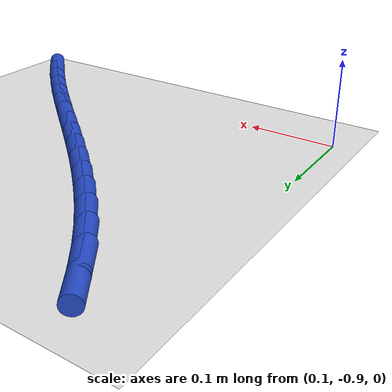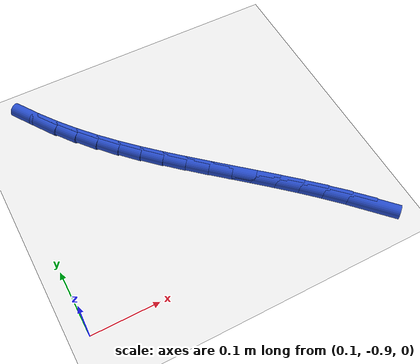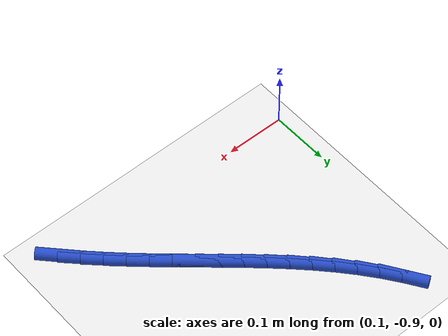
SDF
<sdf version="1.6">
 <world name="default">
  <model name="ground_plane">
   <static>1</static>
   <link name="link">
    <collision name="collision">
     <geometry><plane><normal>0 0 1</normal><size>100 100</size></plane></geometry>
     <surface><friction><ode><mu>100</mu><mu2>50</mu2></ode></friction></surface>
    </collision>
    <visual name="visual">
     <cast_shadows>0</cast_shadows>
     <geometry><plane><normal>0 0 1</normal><size>100 100</size></plane></geometry>
     <material>
      <script><uri>file://media/materials/scripts/gazebo.material</uri><name>Gazebo/WhiteGlow</name></script>
     </material>
    </visual>
   </link>
  </model>
  <model name="line">
   <link name="link_168">
    <pose>0.5252032725510724 -0.910985228207769 0.01 0 1.57 -0.8115361258432559</pose>
    <collision name="collision">
     <geometry><cylinder><radius>0.01</radius><length>0.08</length></cylinder></geometry>
    </collision>
    <visual name="visual">
     <material>
      <script><name>Gazebo/Blue</name><uri>file://media/materials/scripts/gazebo.material</uri></script>
     </material>
     <geometry><cylinder><radius>0.01</radius><length>0.08</length></cylinder></geometry>
    </visual>
   </link>
   <link name="link_169">
    <pose>0.5014257152789207 -0.885931017264958 0.01 0 1.57 -0.7833637095438479</pose>
    <collision name="collision">
     <geometry><cylinder><radius>0.01</radius><length>0.08</length></cylinder></geometry>
    </collision>
    <visual name="visual">
     <material>
      <script><name>Gazebo/Blue</name><uri>file://media/materials/scripts/gazebo.material</uri></script>
     </material>
     <geometry><cylinder><radius>0.01</radius><length>0.08</length></cylinder></geometry>
    </visual>
   </link>
   <link name="link_170">
    <pose>0.4770028307260287 -0.8616073055495197 0.01 0 1.57 -0.7577244981144322</pose>
    <collision name="collision">
     <geometry><cylinder><radius>0.01</radius><length>0.08</length></cylinder></geometry>
    </collision>
    <visual name="visual">
     <material>
      <script><name>Gazebo/Blue</name><uri>file://media/materials/scripts/gazebo.material</uri></script>
     </material>
     <geometry><cylinder><radius>0.01</radius><length>0.08</length></cylinder></geometry>
    </visual>
   </link>
   <link name="link_171">
    <pose>0.4520070286931518 -0.8379580347365837 0.01 0 1.57 -0.7383752324560617</pose>
    <collision name="collision">
     <geometry><cylinder><radius>0.01</radius><length>0.08</length></cylinder></geometry>
    </collision>
    <visual name="visual">
     <material>
      <script><name>Gazebo/Blue</name><uri>file://media/materials/scripts/gazebo.material</uri></script>
     </material>
     <geometry><cylinder><radius>0.01</radius><length>0.08</length></cylinder></geometry>
    </visual>
   </link>
   <link name="link_172">
    <pose>0.4265926795119469 -0.8148280656366896 0.01 0 1.57 -0.7253453768533851</pose>
    <collision name="collision">
     <geometry><cylinder><radius>0.01</radius><length>0.08</length></cylinder></geometry>
    </collision>
    <visual name="visual">
     <material>
      <script><name>Gazebo/Blue</name><uri>file://media/materials/scripts/gazebo.material</uri></script>
     </material>
     <geometry><cylinder><radius>0.01</radius><length>0.08</length></cylinder></geometry>
    </visual>
   </link>
   <link name="link_173">
    <pose>0.4009141535140719 -0.7920622590603772 0.01 0 1.57 -0.7186541052960764</pose>
    <collision name="collision">
     <geometry><cylinder><radius>0.01</radius><length>0.08</length></cylinder></geometry>
    </collision>
    <visual name="visual">
     <material>
      <script><name>Gazebo/Blue</name><uri>file://media/materials/scripts/gazebo.material</uri></script>
     </material>
     <geometry><cylinder><radius>0.01</radius><length>0.08</length></cylinder></geometry>
    </visual>
   </link>
   <link name="link_174">
    <pose>0.3751258210311842 -0.7695054758181852 0.01 0 1.57 -0.7183260035977945</pose>
    <collision name="collision">
     <geometry><cylinder><radius>0.01</radius><length>0.08</length></cylinder></geometry>
    </collision>
    <visual name="visual">
     <material>
      <script><name>Gazebo/Blue</name><uri>file://media/materials/scripts/gazebo.material</uri></script>
     </material>
     <geometry><cylinder><radius>0.01</radius><length>0.08</length></cylinder></geometry>
    </visual>
   </link>
   <link name="link_175">
    <pose>0.3493820523949413 -0.7470025767206536 0.01 0 1.57 -0.7243993301582526</pose>
    <collision name="collision">
     <geometry><cylinder><radius>0.01</radius><length>0.08</length></cylinder></geometry>
    </collision>
    <visual name="visual">
     <material>
      <script><name>Gazebo/Blue</name><uri>file://media/materials/scripts/gazebo.material</uri></script>
     </material>
     <geometry><cylinder><radius>0.01</radius><length>0.08</length></cylinder></geometry>
    </visual>
   </link>
   <link name="link_176">
    <pose>0.3238372179370008 -0.7243984225783221 0.01 0 1.57 -0.7369266751486617</pose>
    <collision name="collision">
     <geometry><cylinder><radius>0.01</radius><length>0.08</length></cylinder></geometry>
    </collision>
    <visual name="visual">
     <material>
      <script><name>Gazebo/Blue</name><uri>file://media/materials/scripts/gazebo.material</uri></script>
     </material>
     <geometry><cylinder><radius>0.01</radius><length>0.08</length></cylinder></geometry>
    </visual>
   </link>
   <link name="link_177">
    <pose>0.29864568798902014 -0.7015378742017295 0.01 0 1.57 -0.7559676951403903</pose>
    <collision name="collision">
     <geometry><cylinder><radius>0.01</radius><length>0.08</length></cylinder></geometry>
    </collision>
    <visual name="visual">
     <material>
      <script><name>Gazebo/Blue</name><uri>file://media/materials/scripts/gazebo.material</uri></script>
     </material>
     <geometry><cylinder><radius>0.01</radius><length>0.08</length></cylinder></geometry>
    </visual>
   </link>
   <link name="link_178">
    <pose>0.2739618328826571 -0.6782657924014158 0.01 0 1.57 -0.781573414787194</pose>
    <collision name="collision">
     <geometry><cylinder><radius>0.01</radius><length>0.08</length></cylinder></geometry>
    </collision>
    <visual name="visual">
     <material>
      <script><name>Gazebo/Blue</name><uri>file://media/materials/scripts/gazebo.material</uri></script>
     </material>
     <geometry><cylinder><radius>0.01</radius><length>0.08</length></cylinder></geometry>
    </visual>
   </link>
   <link name="link_179">
    <pose>0.24994002294956882 -0.6544270379879206 0.01 0 1.57 -0.8137616327898742</pose>
    <collision name="collision">
     <geometry><cylinder><radius>0.01</radius><length>0.08</length></cylinder></geometry>
    </collision>
    <visual name="visual">
     <material>
      <script><name>Gazebo/Blue</name><uri>file://media/materials/scripts/gazebo.material</uri></script>
     </material>
     <geometry><cylinder><radius>0.01</radius><length>0.08</length></cylinder></geometry>
    </visual>
   </link>
   <link name="link_180">
    <pose>0.2267346285214131 -0.6298664717717829 0.01 0 1.57 -0.8524835362517036</pose>
    <collision name="collision">
     <geometry><cylinder><radius>0.01</radius><length>0.08</length></cylinder></geometry>
    </collision>
    <visual name="visual">
     <material>
      <script><name>Gazebo/Blue</name><uri>file://media/materials/scripts/gazebo.material</uri></script>
     </material>
     <geometry><cylinder><radius>0.01</radius><length>0.08</length></cylinder></geometry>
    </visual>
   </link>
   <link name="link_181">
    <pose>0.20450001992984748 -0.6044289545635424 0.01 0 1.57 -0.8975131277024927</pose>
    <collision name="collision">
     <geometry><cylinder><radius>0.01</radius><length>0.08</length></cylinder></geometry>
    </collision>
    <visual name="visual">
     <material>
      <script><name>Gazebo/Blue</name><uri>file://media/materials/scripts/gazebo.material</uri></script>
     </material>
     <geometry><cylinder><radius>0.01</radius><length>0.08</length></cylinder></geometry>
    </visual>
   </link>
   <link name="link_182">
    <pose>0.1833892275966014 -0.5779614614706887 0.01 0 1.57 -0.9452769629866462</pose>
    <collision name="collision">
     <geometry><cylinder><radius>0.01</radius><length>0.08</length></cylinder></geometry>
    </collision>
    <visual name="visual">
     <material>
      <script><name>Gazebo/Blue</name><uri>file://media/materials/scripts/gazebo.material</uri></script>
     </material>
     <geometry><cylinder><radius>0.01</radius><length>0.08</length></cylinder></geometry>
    </visual>
   </link>
   <link name="link_183">
    <pose>0.16349111441517844 -0.5504122200852256 0.01 0 1.57 -0.991045850916774</pose>
    <collision name="collision">
     <geometry><cylinder><radius>0.01</radius><length>0.08</length></cylinder></geometry>
    </collision>
    <visual name="visual">
     <material>
      <script><name>Gazebo/Blue</name><uri>file://media/materials/scripts/gazebo.material</uri></script>
     </material>
     <geometry><cylinder><radius>0.01</radius><length>0.08</length></cylinder></geometry>
    </visual>
   </link>
  </model>
 </world>
</sdf>
